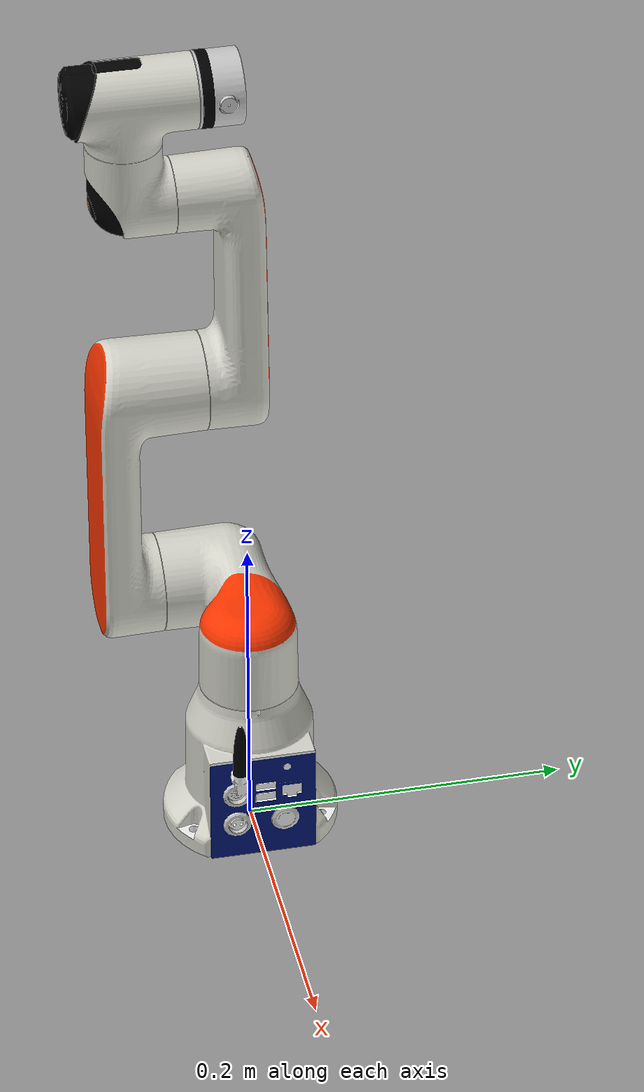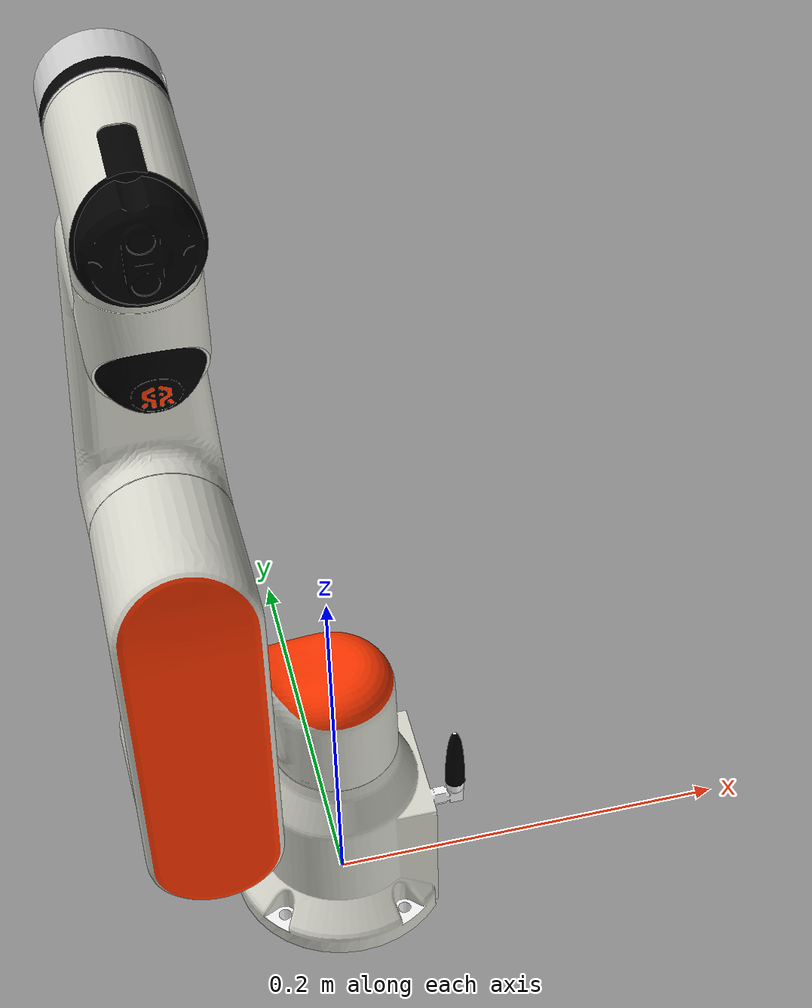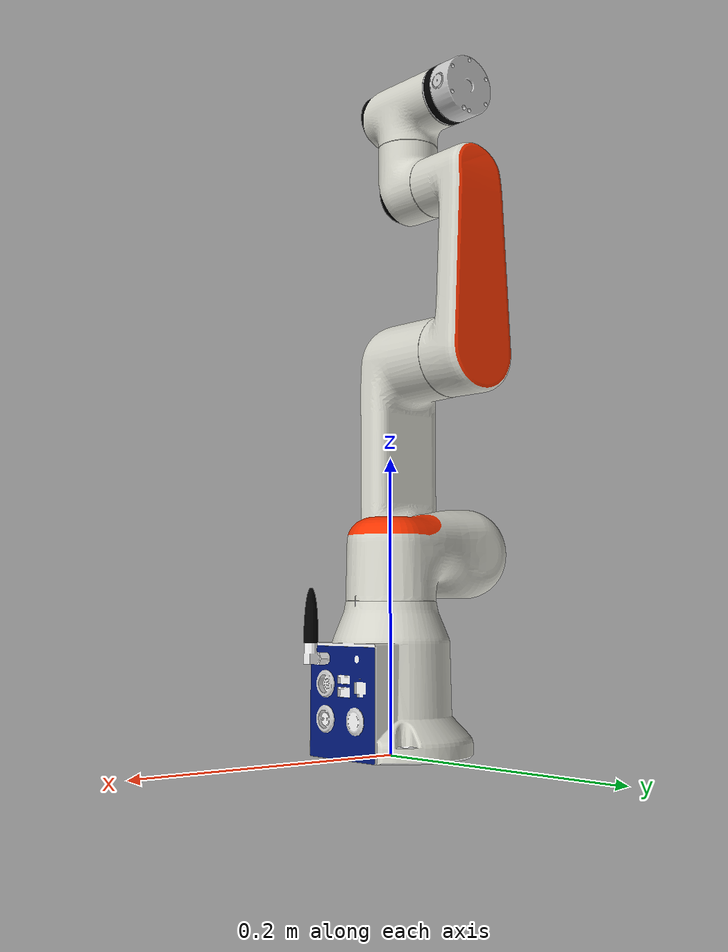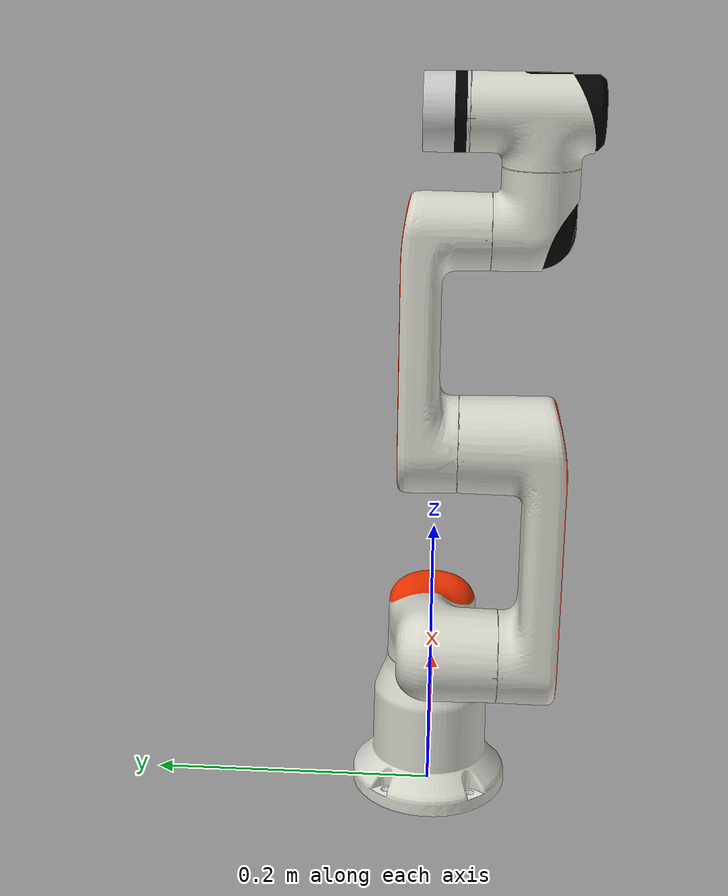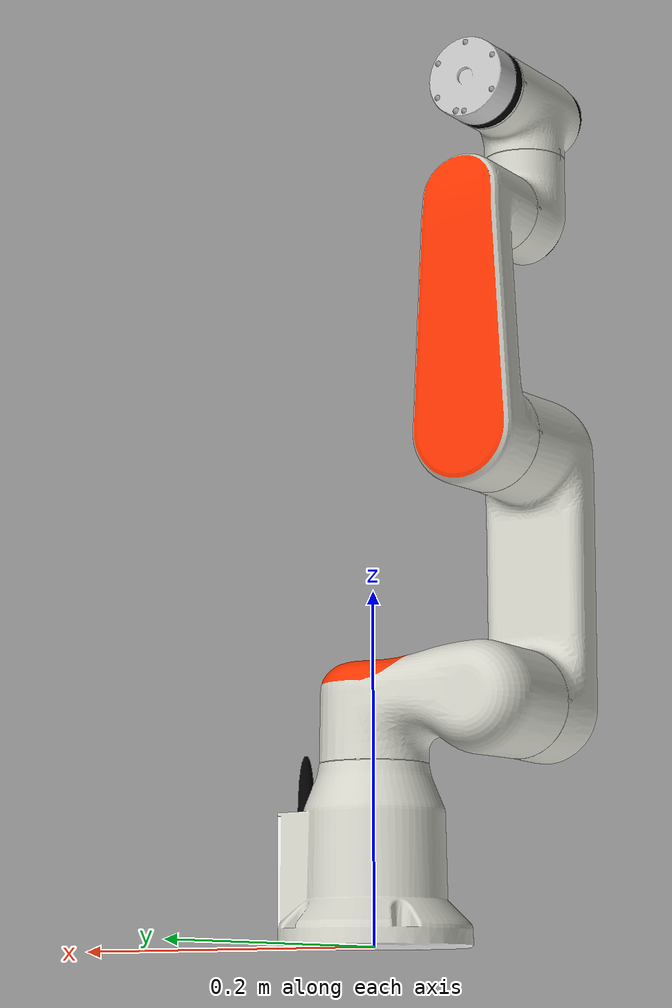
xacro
<?xml version='1.0' encoding='utf-8'?>
<robot name="rm_eco62">
  <link name="base_root" />
  <joint name="base_root_joint" type="fixed">
    <origin rpy="0 0 0" xyz="0 0 0" />
    <parent link="base_root" />
    <child link="base_link" />
  </joint>
  <link name="base_link">
    <inertial>
      <origin rpy="0 0 0" xyz="0.00133682761157797 -8.82763422017089E-05 0.0439834418774717" />
      <mass value="0.584825481285431" />
      <inertia ixx="0.000775925119945014" ixy="2.98148797430621E-06" ixz="-2.52746653512818E-05" iyy="0.000790075378837822" iyz="2.12739218651747E-06" izz="0.000587764326506914" />
    </inertial>
    <collision>
      <origin rpy="0 0 0" xyz="0 0 0" />
      <geometry>
        <mesh filename="package://rm_description/meshes/rm_eco62_arm/base_link.STL" />
      </geometry>
    </collision>
    <visual>
      <origin xyz="0 0 0" rpy="0 0 0" />
      <geometry>
        <mesh filename="package://rm_description/meshes/dae/eco62/base_link.dae" />
      </geometry>
    </visual>
  </link>
  <link name="Link1">
    <inertial>
      <origin rpy="0 0 0" xyz="-0.0382156936663754 -0.00545476263009575 -0.00248189073126664" />
      <mass value="0.384569120432882" />
      <inertia ixx="0.00022257753835175" ixy="-7.70372317374323E-05" ixz="4.37635506114307E-05" iyy="0.000605579716850644" iyz="4.05126631912246E-06" izz="0.000631817968488901" />
    </inertial>
    <collision>
      <origin rpy="0 0 0" xyz="0 0 0" />
      <geometry>
        <mesh filename="package://rm_description/meshes/rm_eco62_arm/Link1.STL" />
      </geometry>
    </collision>
    <visual>
      <origin xyz="0 0 0" rpy="0 0 0" />
      <geometry>
        <mesh filename="package://rm_description/meshes/dae/eco62/link_1.dae" />
      </geometry>
    </visual>
  </link>
  <joint name="joint1" type="revolute">
    <origin rpy="0 0 0" xyz="0 0 0.136000000000009" />
    <parent link="base_link" />
    <child link="Link1" />
    <axis xyz="0 0 1" />
    <limit effort="10" lower="-3.1067" upper="3.1067" velocity="3.927" />
  </joint>
  <link name="Link2">
    <inertial>
      <origin rpy="0 0 0" xyz="0.0876574260013383 7.06115941204177E-07 -0.0582757120216016" />
      <mass value="1.33623855048231" />
      <inertia ixx="0.000782439324383488" ixy="3.30138611119598E-08" ixz="-0.000592670610886331" iyy="0.00567774731360305" iyz="-1.48333937024788E-08" izz="0.0056479745580982" />
    </inertial>
    <collision>
      <origin rpy="0 0 0" xyz="0 0 0" />
      <geometry>
        <mesh filename="package://rm_description/meshes/rm_eco62_arm/Link2.STL" />
      </geometry>
    </collision>
    <visual>
      <origin xyz="0 0 0" rpy="0 0 0" />
      <geometry>
        <mesh filename="package://rm_description/meshes/dae/eco62/link_2.dae" />
      </geometry>
    </visual>
  </link>
  <joint name="joint2" type="revolute">
    <origin rpy="-1.5707963267949 -1.5707963267949 0" xyz="-0.0700000000000007 0 0" />
    <parent link="Link1" />
    <child link="Link2" />
    <axis xyz="0 0 -1" />
    <limit effort="10" lower="-1.8151" upper="2.9496" velocity="3.927" />
  </joint>
  <link name="Link3">
    <inertial>
      <origin rpy="0 0 0" xyz="0.064390668361978 1.69820375292562E-06 0.00482231553499824" />
      <mass value="0.332154099628179" />
      <inertia ixx="0.000128065855853166" ixy="3.73125577149301E-09" ixz="5.57695241071185E-05" iyy="0.00114220860014717" iyz="-1.28387853936544E-09" izz="0.00116351274597718" />
    </inertial>
    <collision>
      <origin rpy="0 0 0" xyz="0 0 0" />
      <geometry>
        <mesh filename="package://rm_description/meshes/rm_eco62_arm/Link3.STL" />
      </geometry>
    </collision>
    <visual>
      <origin xyz="0 0 0" rpy="0 0 0" />
      <geometry>
        <mesh filename="package://rm_description/meshes/dae/eco62/link_3.dae" />
      </geometry>
    </visual>
  </link>
  <joint name="joint3" type="revolute">
    <origin rpy="0 0 0" xyz="0.148000000000001 0 0" />
    <parent link="Link2" />
    <child link="Link3" />
    <axis xyz="0 0 1" />
    <limit effort="10" lower="-2.6354" upper="2.3213" velocity="3.927" />
  </joint>
  <link name="Link4">
    <inertial>
      <origin rpy="0 0 0" xyz="1.37711279149522E-06 -0.009725196668249 0.00396013823109714" />
      <mass value="0.110752178156894" />
      <inertia ixx="4.91297766773849E-05" ixy="1.12199756370538E-09" ixz="-1.03735450320981E-09" iyy="3.42721993306208E-05" iyz="-5.21925020486496E-06" izz="4.57514364497173E-05" />
    </inertial>
    <collision>
      <origin rpy="0 0 0" xyz="0 0 0" />
      <geometry>
        <mesh filename="package://rm_description/meshes/rm_eco62_arm/Link4.STL" />
      </geometry>
    </collision>
    <visual>
      <origin xyz="0 0 0" rpy="0 0 0" />
      <geometry>
        <mesh filename="package://rm_description/meshes/dae/eco62/link_4.dae" />
      </geometry>
    </visual>
  </link>
  <joint name="joint4" type="revolute">
    <origin rpy="0 0 1.5708" xyz="0.136 0 -0.058513" />
    <parent link="Link3" />
    <child link="Link4" />
    <axis xyz="0 0 -1" />
    <limit effort="2" lower="-3.002" upper="3.002" velocity="3.927" />
  </joint>
  <link name="Link5">
    <inertial>
      <origin rpy="0 0 0" xyz="5.08842681060107E-07 0.00420077719178583 -0.00358941394658707" />
      <mass value="0.153716854003785" />
      <inertia ixx="9.76286576153493E-05" ixy="-5.77416162886506E-09" ixz="1.60382177530514E-09" iyy="5.13289975047188E-05" iyz="-2.87378837336067E-06" izz="9.08724519634991E-05" />
    </inertial>
    <collision>
      <origin rpy="0 0 0" xyz="0 0 0" />
      <geometry>
        <mesh filename="package://rm_description/meshes/rm_eco62_arm/Link5.STL" />
      </geometry>
    </collision>
    <visual>
      <origin xyz="0 0 0" rpy="0 0 0" />
      <geometry>
        <mesh filename="package://rm_description/meshes/dae/eco62/link_5.dae" />
      </geometry>
    </visual>
  </link>
  <joint name="joint5" type="revolute">
    <origin rpy="1.5707963267949 0 0" xyz="0 -0.0709999970209708 0" />
    <parent link="Link4" />
    <child link="Link5" />
    <axis xyz="0 0 1" />
    <limit effort="2" lower="-3.002" upper="3.002" velocity="3.927" />
  </joint>
  <link name="Link6">
    <inertial>
      <origin rpy="0 0 0" xyz="-7.72448794437025E-05 -2.38414868461989E-05 -0.0139344966930892" />
      <mass value="0.0471960682349858" />
      <inertia ixx="9.48227136591617E-06" ixy="5.23848349048734E-09" ixz="1.6103674761691E-08" iyy="9.4363237926155E-06" iyz="1.3729123698332E-08" izz="1.30412862089912E-05" />
    </inertial>
    <collision>
      <origin rpy="0 0 0" xyz="0 0 0" />
      <geometry>
        <mesh filename="package://rm_description/meshes/rm_eco62_arm/Link6.STL" />
      </geometry>
    </collision>
    <visual>
      <origin xyz="0 0 0" rpy="0 0 0" />
      <geometry>
        <mesh filename="package://rm_description/meshes/dae/eco62/link_6.dae" />
      </geometry>
    </visual>
  </link>
  <joint name="joint6" type="revolute">
    <origin rpy="-1.5707963267949 0 0" xyz="0 0.0706999977831763 0" />
    <parent link="Link5" />
    <child link="Link6" />
    <axis xyz="0 0 0.999999999999983" />
    <limit effort="2" lower="-6.2832" upper="6.2832" velocity="3.927" />
  </joint>
</robot>
